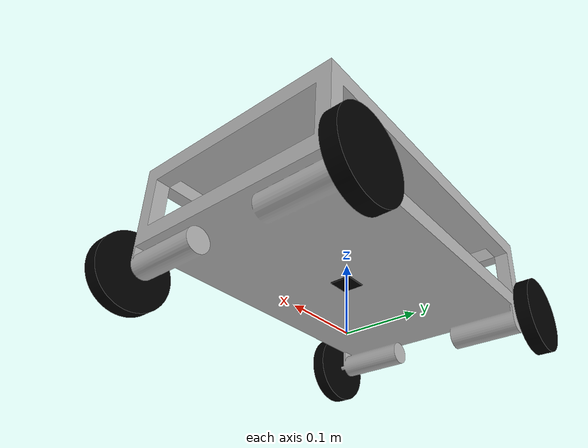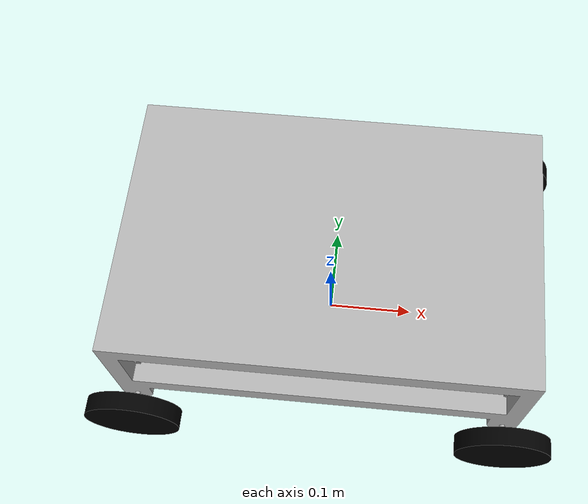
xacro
<?xml version="1.0" ?>
<robot name="tyson" xmlns:xacro="http://www.ros.org/wiki/xacro">

<xacro:arg name="use_sim" default="true"/>
<xacro:property name="use_sim" value="$(arg use_sim)"/>

<xacro:include filename="$(find tyson_description)/urdf/materials.xacro" />
<xacro:include filename="$(find tyson_description)/urdf/tyson.ros2control" />
<xacro:include filename="$(find tyson_description)/urdf/tyson.gazebo" />
<link name="base_link">
  <inertial>
    <origin xyz="3.443387508644423e-06 2.458380024091806e-06 0.11917837981794291" rpy="0 0 0"/>
    <mass value="25.445910887020688"/>
    <inertia ixx="0.374368" iyy="0.766544" izz="0.996266" ixy="-1.3e-05" iyz="4.1e-05" ixz="8.3e-05"/>
  </inertial>
  <visual>
    <origin xyz="0 0 0" rpy="0 0 0"/>
    <geometry>
      <mesh filename="file://$(find tyson_description)/meshes/base_link.stl" scale="0.001 0.001 0.001"/>
    </geometry>
    <material name="silver"/>
  </visual>
  <collision>
    <origin xyz="0 0 0" rpy="0 0 0"/>
    <geometry>
      <mesh filename="file://$(find tyson_description)/meshes/base_link.stl" scale="0.001 0.001 0.001"/>
    </geometry>
  </collision>
</link>

<link name="wheel_fr_1">
  <inertial>
    <origin xyz="-7.771561172376096e-16 -0.010000000000000037 -8.881784197001252e-16" rpy="0 0 0"/>
    <mass value="0.28698034200312494"/>
    <inertia ixx="0.000211" iyy="0.000403" izz="0.000211" ixy="0.0" iyz="0.0" ixz="-0.0"/>
  </inertial>
  <visual>
    <origin xyz="-0.208 0.166 -0.053" rpy="0 0 0"/>
    <geometry>
      <mesh filename="file://$(find tyson_description)/meshes/wheel_fr_1.stl" scale="0.001 0.001 0.001"/>
    </geometry>
    <material name="black"/>
  </visual>
  <collision>
    <origin xyz="-0.208 0.166 -0.053" rpy="0 0 0"/>
    <geometry>
      <mesh filename="file://$(find tyson_description)/meshes/wheel_fr_1.stl" scale="0.001 0.001 0.001"/>
    </geometry>
  </collision>
</link>

<link name="wheel_rr_1">
  <inertial>
    <origin xyz="-2.7755575615628914e-17 -0.010000000000000009 -6.938893903907228e-18" rpy="0 0 0"/>
    <mass value="0.28698034200312494"/>
    <inertia ixx="0.000211" iyy="0.000403" izz="0.000211" ixy="0.0" iyz="-0.0" ixz="-0.0"/>
  </inertial>
  <visual>
    <origin xyz="0.208 0.166 -0.053" rpy="0 0 0"/>
    <geometry>
      <mesh filename="file://$(find tyson_description)/meshes/wheel_rr_1.stl" scale="0.001 0.001 0.001"/>
    </geometry>
    <material name="black"/>
  </visual>
  <collision>
    <origin xyz="0.208 0.166 -0.053" rpy="0 0 0"/>
    <geometry>
      <mesh filename="file://$(find tyson_description)/meshes/wheel_rr_1.stl" scale="0.001 0.001 0.001"/>
    </geometry>
  </collision>
</link>

<link name="wheel_fl_1">
  <inertial>
    <origin xyz="2.7755575615628914e-17 0.010000000000000037 3.004606332276949e-07" rpy="0 0 0"/>
    <mass value="0.28698034200312494"/>
    <inertia ixx="0.000211" iyy="0.000403" izz="0.000211" ixy="0.0" iyz="0.0" ixz="0.0"/>
  </inertial>
  <visual>
    <origin xyz="-0.208 -0.166 -0.053" rpy="0 0 0"/>
    <geometry>
      <mesh filename="file://$(find tyson_description)/meshes/wheel_fl_1.stl" scale="0.001 0.001 0.001"/>
    </geometry>
    <material name="black"/>
  </visual>
  <collision>
    <origin xyz="-0.208 -0.166 -0.053" rpy="0 0 0"/>
    <geometry>
      <mesh filename="file://$(find tyson_description)/meshes/wheel_fl_1.stl" scale="0.001 0.001 0.001"/>
    </geometry>
  </collision>
</link>

<link name="wheel_rl_1">
  <inertial>
    <origin xyz="-2.7755575615628914e-17 0.010000000000000009 -6.938893903907228e-18" rpy="0 0 0"/>
    <mass value="0.28698034200312494"/>
    <inertia ixx="0.000211" iyy="0.000403" izz="0.000211" ixy="-0.0" iyz="0.0" ixz="-0.0"/>
  </inertial>
  <visual>
    <origin xyz="0.208 -0.166 -0.053" rpy="0 0 0"/>
    <geometry>
      <mesh filename="file://$(find tyson_description)/meshes/wheel_rl_1.stl" scale="0.001 0.001 0.001"/>
    </geometry>
    <material name="black"/>
  </visual>
  <collision>
    <origin xyz="0.208 -0.166 -0.053" rpy="0 0 0"/>
    <geometry>
      <mesh filename="file://$(find tyson_description)/meshes/wheel_rl_1.stl" scale="0.001 0.001 0.001"/>
    </geometry>
  </collision>
</link>

<link name="lidar_link_1">
  <inertial>
    <origin xyz="6.230771487094929e-18 6.230771487094929e-18 0.02241035041579241" rpy="0 0 0"/>
    <mass value="0.2966804327814234"/>
    <inertia ixx="0.000145" iyy="0.000145" izz="0.000192" ixy="0.0" iyz="0.0" ixz="0.0"/>
  </inertial>
  <visual>
    <origin xyz="-0.0 -0.0 -0.076" rpy="0 0 0"/>
    <geometry>
      <mesh filename="file://$(find tyson_description)/meshes/lidar_link_1.stl" scale="0.001 0.001 0.001"/>
    </geometry>
    <material name="black"/>
  </visual>
  <collision>
    <origin xyz="-0.0 -0.0 -0.076" rpy="0 0 0"/>
    <geometry>
      <mesh filename="file://$(find tyson_description)/meshes/lidar_link_1.stl" scale="0.001 0.001 0.001"/>
    </geometry>
  </collision>
</link>

<link name="imu_link_1">
  <inertial>
    <origin xyz="0.0 0.0 -0.000999999999999987" rpy="0 0 0"/>
    <mass value="0.0029268000000000024"/>
    <inertia ixx="0.0" iyy="0.0" izz="0.0" ixy="0.0" iyz="-0.0" ixz="-0.0"/>
  </inertial>
  <visual>
    <origin xyz="-0.0 -0.0 -0.073" rpy="0 0 0"/>
    <geometry>
      <mesh filename="file://$(find tyson_description)/meshes/imu_link_1.stl" scale="0.001 0.001 0.001"/>
    </geometry>
    <material name="black"/>
  </visual>
  <collision>
    <origin xyz="-0.0 -0.0 -0.073" rpy="0 0 0"/>
    <geometry>
      <mesh filename="file://$(find tyson_description)/meshes/imu_link_1.stl" scale="0.001 0.001 0.001"/>
    </geometry>
  </collision>
</link>

<joint name="wheel_fr_joint" type="continuous">
  <origin xyz="0.208 -0.166 0.053" rpy="0 0 0"/>
  <parent link="base_link"/>
  <child link="wheel_fr_1"/>
  <axis xyz="0.0 1.0 0.0"/>
</joint>

<joint name="wheel_rr_joint" type="continuous">
  <origin xyz="-0.208 -0.166 0.053" rpy="0 0 0"/>
  <parent link="base_link"/>
  <child link="wheel_rr_1"/>
  <axis xyz="0.0 1.0 0.0"/>
</joint>

<joint name="wheel_fl_joint" type="continuous">
  <origin xyz="0.208 0.166 0.053" rpy="0 0 0"/>
  <parent link="base_link"/>
  <child link="wheel_fl_1"/>
  <axis xyz="0.0 1.0 0.0"/>
</joint>

<joint name="wheel_rl_joint" type="continuous">
  <origin xyz="-0.208 0.166 0.053" rpy="0 0 0"/>
  <parent link="base_link"/>
  <child link="wheel_rl_1"/>
  <axis xyz="0.0 1.0 0.0"/>
</joint>

<joint name="lidar_joint" type="fixed">
  <origin xyz="0.0 0.0 0.076" rpy="0 0 0"/>
  <parent link="base_link"/>
  <child link="lidar_link_1"/>
</joint>

<joint name="imu_joint" type="fixed">
  <origin xyz="0.0 0.0 0.073" rpy="0 0 0"/>
  <parent link="base_link"/>
  <child link="imu_link_1"/>
</joint>

</robot>

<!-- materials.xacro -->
<robot name="tyson" xmlns:xacro="http://www.ros.org/wiki/xacro" >

<material name="silver">
  <color rgba="0.700 0.700 0.700 1.000"/>
</material>

<material name="black">
  <color rgba="0 0 0 1.0"/>
</material>

</robot>

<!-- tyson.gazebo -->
<robot name="tyson" xmlns:xacro="http://www.ros.org/wiki/xacro" >

<xacro:property name="body_color" value="Gazebo/Silver" />

<gazebo reference="base_link">
  <material>${body_color}</material>
  <mu1>0.2</mu1>
  <mu2>0.2</mu2>
  <self_collide>true</self_collide>
  <gravity>true</gravity>
</gazebo>

<gazebo reference="wheel_fr_1">
  <material>${body_color}</material>
  <mu1>0.2</mu1>
  <mu2>0.2</mu2>
  <self_collide>true</self_collide>
</gazebo>

<gazebo reference="wheel_rr_1">
  <material>${body_color}</material>
  <mu1>0.2</mu1>
  <mu2>0.2</mu2>
  <self_collide>true</self_collide>
</gazebo>

<gazebo reference="wheel_fl_1">
  <material>${body_color}</material>
  <mu1>0.2</mu1>
  <mu2>0.2</mu2>
  <self_collide>true</self_collide>
</gazebo>

<gazebo reference="wheel_rl_1">
  <material>${body_color}</material>
  <mu1>0.2</mu1>
  <mu2>0.2</mu2>
  <self_collide>true</self_collide>
</gazebo>

<gazebo reference="lidar_link_1">
  <material>${body_color}</material>
  <mu1>0.2</mu1>
  <mu2>0.2</mu2>
  <self_collide>true</self_collide>
</gazebo>

<gazebo reference="imu_link_1">
  <material>${body_color}</material>
  <mu1>0.2</mu1>
  <mu2>0.2</mu2>
  <self_collide>true</self_collide>
</gazebo>

<gazebo>
  <plugin
    filename="libgz_ros2_control-system.so"
    name="gz_ros2_control::GazeboSimROS2ControlPlugin">

    <parameters>$(find tyson_description)/config/controllers.yaml</parameters>
  </plugin>
</gazebo>

</robot>
